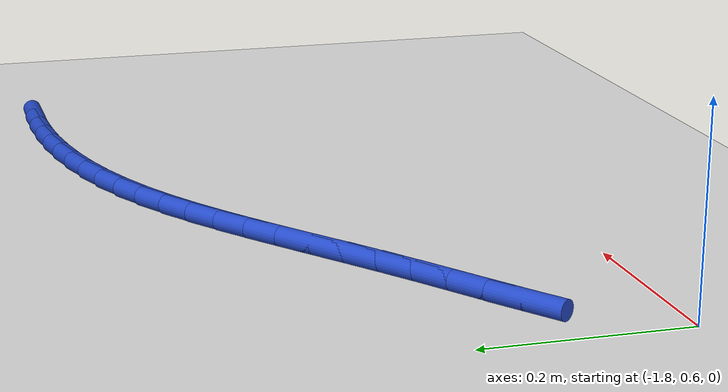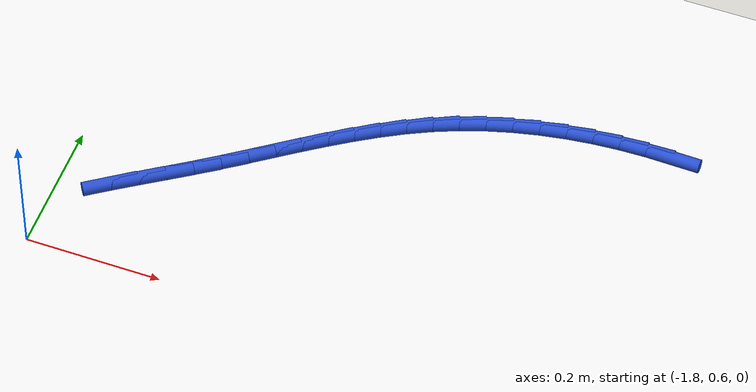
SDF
<sdf version="1.6">
 <world name="default">
  <model name="ground_plane">
   <static>1</static>
   <link name="link">
    <collision name="collision">
     <geometry><plane><normal>0 0 1</normal><size>100 100</size></plane></geometry>
     <surface><friction><ode><mu>100</mu><mu2>50</mu2></ode></friction></surface>
    </collision>
    <visual name="visual">
     <cast_shadows>0</cast_shadows>
     <geometry><plane><normal>0 0 1</normal><size>100 100</size></plane></geometry>
     <material>
      <script><uri>file://media/materials/scripts/gazebo.material</uri><name>Gazebo/WhiteGlow</name></script>
     </material>
    </visual>
   </link>
  </model>
  <model name="line">
   <link name="link_41">
    <pose>-0.9995884712556866 1.0468422260699377 0.01 0 1.57 -0.02410412454142514</pose>
    <collision name="collision">
     <geometry><cylinder><radius>0.01</radius><length>0.08</length></cylinder></geometry>
    </collision>
    <visual name="visual">
     <material>
      <script><name>Gazebo/Blue</name><uri>file://media/materials/scripts/gazebo.material</uri></script>
     </material>
     <geometry><cylinder><radius>0.01</radius><length>0.08</length></cylinder></geometry>
    </visual>
   </link>
   <link name="link_42">
    <pose>-1.0385401528407097 1.0477813041318849 0.01 0 1.57 0.02397031605829382</pose>
    <collision name="collision">
     <geometry><cylinder><radius>0.01</radius><length>0.08</length></cylinder></geometry>
    </collision>
    <visual name="visual">
     <material>
      <script><name>Gazebo/Blue</name><uri>file://media/materials/scripts/gazebo.material</uri></script>
     </material>
     <geometry><cylinder><radius>0.01</radius><length>0.08</length></cylinder></geometry>
    </visual>
   </link>
   <link name="link_43">
    <pose>-1.0775793356899235 1.0468453433132408 0.01 0 1.57 0.07297727196321811</pose>
    <collision name="collision">
     <geometry><cylinder><radius>0.01</radius><length>0.08</length></cylinder></geometry>
    </collision>
    <visual name="visual">
     <material>
      <script><name>Gazebo/Blue</name><uri>file://media/materials/scripts/gazebo.material</uri></script>
     </material>
     <geometry><cylinder><radius>0.01</radius><length>0.08</length></cylinder></geometry>
    </visual>
   </link>
   <link name="link_44">
    <pose>-1.1165381483093906 1.043997177511281 0.01 0 1.57 0.12329537877361363</pose>
    <collision name="collision">
     <geometry><cylinder><radius>0.01</radius><length>0.08</length></cylinder></geometry>
    </collision>
    <visual name="visual">
     <material>
      <script><name>Gazebo/Blue</name><uri>file://media/materials/scripts/gazebo.material</uri></script>
     </material>
     <geometry><cylinder><radius>0.01</radius><length>0.08</length></cylinder></geometry>
    </visual>
   </link>
   <link name="link_45">
    <pose>-1.1552452857007953 1.039200435384209 0.01 0 1.57 0.17532218516598966</pose>
    <collision name="collision">
     <geometry><cylinder><radius>0.01</radius><length>0.08</length></cylinder></geometry>
    </collision>
    <visual name="visual">
     <material>
      <script><name>Gazebo/Blue</name><uri>file://media/materials/scripts/gazebo.material</uri></script>
     </material>
     <geometry><cylinder><radius>0.01</radius><length>0.08</length></cylinder></geometry>
    </visual>
   </link>
   <link name="link_46">
    <pose>-1.193529442865821 1.0324187455902265 0.01 0 1.57 0.22945096936058504</pose>
    <collision name="collision">
     <geometry><cylinder><radius>0.01</radius><length>0.08</length></cylinder></geometry>
    </collision>
    <visual name="visual">
     <material>
      <script><name>Gazebo/Blue</name><uri>file://media/materials/scripts/gazebo.material</uri></script>
     </material>
     <geometry><cylinder><radius>0.01</radius><length>0.08</length></cylinder></geometry>
    </visual>
   </link>
   <link name="link_47">
    <pose>-1.2312193148061519 1.0236157367875358 0.01 0 1.57 0.28606680354659647</pose>
    <collision name="collision">
     <geometry><cylinder><radius>0.01</radius><length>0.08</length></cylinder></geometry>
    </collision>
    <visual name="visual">
     <material>
      <script><name>Gazebo/Blue</name><uri>file://media/materials/scripts/gazebo.material</uri></script>
     </material>
     <geometry><cylinder><radius>0.01</radius><length>0.08</length></cylinder></geometry>
    </visual>
   </link>
   <link name="link_48">
    <pose>-1.2681435965234715 1.0127550376343397 0.01 0 1.57 0.34553840286568643</pose>
    <collision name="collision">
     <geometry><cylinder><radius>0.01</radius><length>0.08</length></cylinder></geometry>
    </collision>
    <visual name="visual">
     <material>
      <script><name>Gazebo/Blue</name><uri>file://media/materials/scripts/gazebo.material</uri></script>
     </material>
     <geometry><cylinder><radius>0.01</radius><length>0.08</length></cylinder></geometry>
    </visual>
   </link>
   <link name="link_49">
    <pose>-1.3041309830194643 0.9998002767888412 0.01 0 1.57 0.4080485546917933</pose>
    <collision name="collision">
     <geometry><cylinder><radius>0.01</radius><length>0.08</length></cylinder></geometry>
    </collision>
    <visual name="visual">
     <material>
      <script><name>Gazebo/Blue</name><uri>file://media/materials/scripts/gazebo.material</uri></script>
     </material>
     <geometry><cylinder><radius>0.01</radius><length>0.08</length></cylinder></geometry>
    </visual>
   </link>
   <link name="link_50">
    <pose>-1.3390151592330886 0.984719390913751 0.01 0 1.57 0.46855449114741743</pose>
    <collision name="collision">
     <geometry><cylinder><radius>0.01</radius><length>0.08</length></cylinder></geometry>
    </collision>
    <visual name="visual">
     <material>
      <script><name>Gazebo/Blue</name><uri>file://media/materials/scripts/gazebo.material</uri></script>
     </material>
     <geometry><cylinder><radius>0.01</radius><length>0.08</length></cylinder></geometry>
    </visual>
   </link>
   <link name="link_51">
    <pose>-1.3727941498269294 0.9676221974673627 0.01 0 1.57 0.5202995534229727</pose>
    <collision name="collision">
     <geometry><cylinder><radius>0.01</radius><length>0.08</length></cylinder></geometry>
    </collision>
    <visual name="visual">
     <material>
      <script><name>Gazebo/Blue</name><uri>file://media/materials/scripts/gazebo.material</uri></script>
     </material>
     <geometry><cylinder><radius>0.01</radius><length>0.08</length></cylinder></geometry>
    </visual>
   </link>
   <link name="link_52">
    <pose>-1.405663740203178 0.948789248350323 0.01 0 1.57 0.5624614812539859</pose>
    <collision name="collision">
     <geometry><cylinder><radius>0.01</radius><length>0.08</length></cylinder></geometry>
    </collision>
    <visual name="visual">
     <material>
      <script><name>Gazebo/Blue</name><uri>file://media/materials/scripts/gazebo.material</uri></script>
     </material>
     <geometry><cylinder><radius>0.01</radius><length>0.08</length></cylinder></geometry>
    </visual>
   </link>
   <link name="link_53">
    <pose>-1.437831461794479 0.9285112362625276 0.01 0 1.57 0.594895043751565</pose>
    <collision name="collision">
     <geometry><cylinder><radius>0.01</radius><length>0.08</length></cylinder></geometry>
    </collision>
    <visual name="visual">
     <material>
      <script><name>Gazebo/Blue</name><uri>file://media/materials/scripts/gazebo.material</uri></script>
     </material>
     <geometry><cylinder><radius>0.01</radius><length>0.08</length></cylinder></geometry>
    </visual>
   </link>
   <link name="link_54">
    <pose>-1.4695048460334779 0.9070788539038704 0.01 0 1.57 0.617651340984811</pose>
    <collision name="collision">
     <geometry><cylinder><radius>0.01</radius><length>0.08</length></cylinder></geometry>
    </collision>
    <visual name="visual">
     <material>
      <script><name>Gazebo/Blue</name><uri>file://media/materials/scripts/gazebo.material</uri></script>
     </material>
     <geometry><cylinder><radius>0.01</radius><length>0.08</length></cylinder></geometry>
    </visual>
   </link>
   <link name="link_55">
    <pose>-1.500891424352818 0.8847827939742459 0.01 0 1.57 0.630884267205893</pose>
    <collision name="collision">
     <geometry><cylinder><radius>0.01</radius><length>0.08</length></cylinder></geometry>
    </collision>
    <visual name="visual">
     <material>
      <script><name>Gazebo/Blue</name><uri>file://media/materials/scripts/gazebo.material</uri></script>
     </material>
     <geometry><cylinder><radius>0.01</radius><length>0.08</length></cylinder></geometry>
    </visual>
   </link>
   <link name="link_56">
    <pose>-1.5321987281851455 0.8619137491735495 0.01 0 1.57 0.6347853095381931</pose>
    <collision name="collision">
     <geometry><cylinder><radius>0.01</radius><length>0.08</length></cylinder></geometry>
    </collision>
    <visual name="visual">
     <material>
      <script><name>Gazebo/Blue</name><uri>file://media/materials/scripts/gazebo.material</uri></script>
     </material>
     <geometry><cylinder><radius>0.01</radius><length>0.08</length></cylinder></geometry>
    </visual>
   </link>
   <link name="link_57">
    <pose>-1.563634288963104 0.8387624122016755 0.01 0 1.57 0.6295472895425105</pose>
    <collision name="collision">
     <geometry><cylinder><radius>0.01</radius><length>0.08</length></cylinder></geometry>
    </collision>
    <visual name="visual">
     <material>
      <script><name>Gazebo/Blue</name><uri>file://media/materials/scripts/gazebo.material</uri></script>
     </material>
     <geometry><cylinder><radius>0.01</radius><length>0.08</length></cylinder></geometry>
    </visual>
   </link>
   <link name="link_58">
    <pose>-1.59540563811934 0.8156194757585186 0.01 0 1.57 0.6153993894372117</pose>
    <collision name="collision">
     <geometry><cylinder><radius>0.01</radius><length>0.08</length></cylinder></geometry>
    </collision>
    <visual name="visual">
     <material>
      <script><name>Gazebo/Blue</name><uri>file://media/materials/scripts/gazebo.material</uri></script>
     </material>
     <geometry><cylinder><radius>0.01</radius><length>0.08</length></cylinder></geometry>
    </visual>
   </link>
   <link name="link_59">
    <pose>-1.6277189389205615 0.7927744144876836 0.01 0 1.57 0.598895487060055</pose>
    <collision name="collision">
     <geometry><cylinder><radius>0.01</radius><length>0.08</length></cylinder></geometry>
    </collision>
    <visual name="visual">
     <material>
      <script><name>Gazebo/Blue</name><uri>file://media/materials/scripts/gazebo.material</uri></script>
     </material>
     <geometry><cylinder><radius>0.01</radius><length>0.08</length></cylinder></geometry>
    </visual>
   </link>
   <link name="link_60">
    <pose>-1.6605850010427132 0.770342782849543 0.01 0 1.57 0.5928847009661464</pose>
    <collision name="collision">
     <geometry><cylinder><radius>0.01</radius><length>0.08</length></cylinder></geometry>
    </collision>
    <visual name="visual">
     <material>
      <script><name>Gazebo/Blue</name><uri>file://media/materials/scripts/gazebo.material</uri></script>
     </material>
     <geometry><cylinder><radius>0.01</radius><length>0.08</length></cylinder></geometry>
    </visual>
   </link>
   <link name="link_61">
    <pose>-1.6936180362979594 0.7480870505576414 0.01 0 1.57 0.598826889611957</pose>
    <collision name="collision">
     <geometry><cylinder><radius>0.01</radius><length>0.08</length></cylinder></geometry>
    </collision>
    <visual name="visual">
     <material>
      <script><name>Gazebo/Blue</name><uri>file://media/materials/scripts/gazebo.material</uri></script>
     </material>
     <geometry><cylinder><radius>0.01</radius><length>0.08</length></cylinder></geometry>
    </visual>
   </link>
   <link name="link_62">
    <pose>-1.7263841951715537 0.7257268990934262 0.01 0 1.57 0.6169585502910816</pose>
    <collision name="collision">
     <geometry><cylinder><radius>0.01</radius><length>0.08</length></cylinder></geometry>
    </collision>
    <visual name="visual">
     <material>
      <script><name>Gazebo/Blue</name><uri>file://media/materials/scripts/gazebo.material</uri></script>
     </material>
     <geometry><cylinder><radius>0.01</radius><length>0.08</length></cylinder></geometry>
    </visual>
   </link>
  </model>
 </world>
</sdf>
